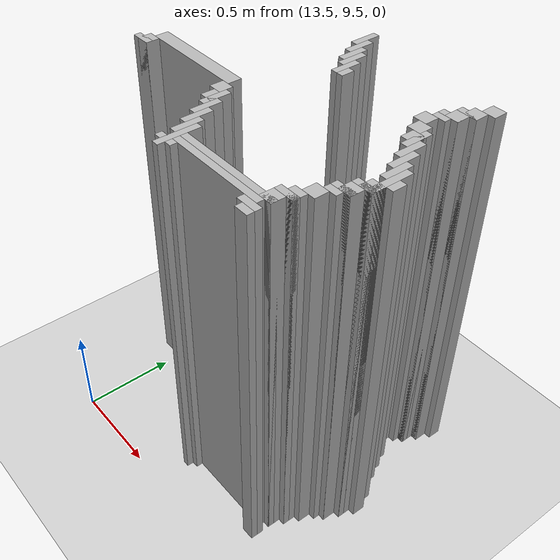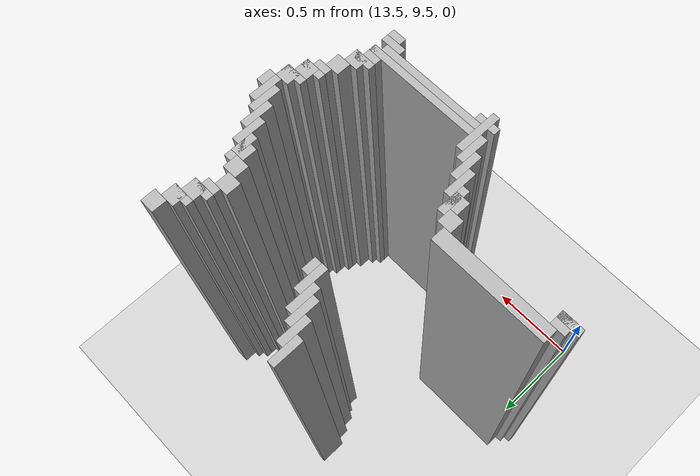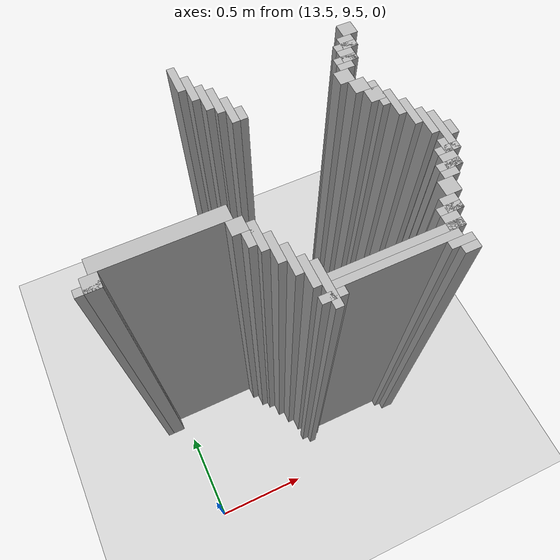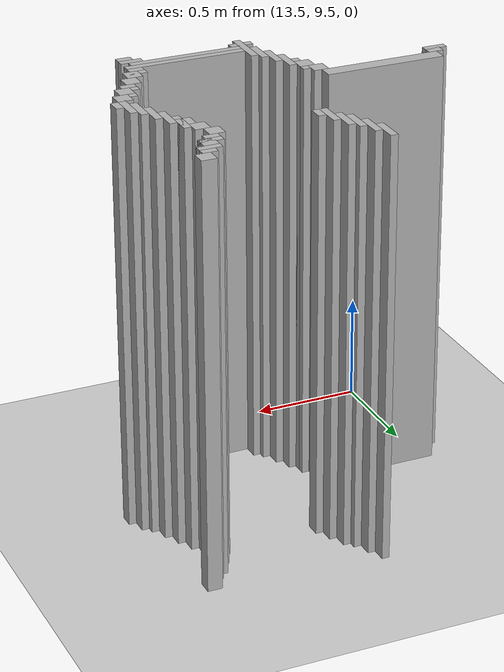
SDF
<sdf version="1.6">
 <world name="slam_world">
  <model name="ground_plane">
   <static>true</static>
   <link name="link">
    <collision name="collision">
     <geometry><plane><normal>0 0 1</normal><size>100 100</size></plane></geometry>
    </collision>
    <visual name="visual">
     <geometry><plane><normal>0 0 1</normal><size>100 100</size></plane></geometry>
     <material>
      <ambient>0.8 0.8 0.8 1</ambient>
      <diffuse>0.8 0.8 0.8 1</diffuse>
      <specular>0.8 0.8 0.8 1</specular>
     </material>
    </visual>
   </link>
  </model>
  <model name="wall_2138">
   <static>true</static>
   <pose>14.042923433874709 10.893271461716937 1.0 0 0 0</pose>
   <link name="link">
    <collision name="collision">
     <geometry><box><size>0.03480278422273782 0.13921113689095127 2.0</size></box></geometry>
    </collision>
    <visual name="visual">
     <geometry><box><size>0.03480278422273782 0.13921113689095127 2.0</size></box></geometry>
     <material><ambient>0.5 0.5 0.5 1</ambient><diffuse>0.7 0.7 0.7 1</diffuse></material>
    </visual>
   </link>
  </model>
  <model name="wall_2161">
   <static>true</static>
   <pose>14.077726218097448 10.82366589327146 1.0 0 0 0</pose>
   <link name="link">
    <collision name="collision">
     <geometry><box><size>0.03480278422273782 0.13921113689095127 2.0</size></box></geometry>
    </collision>
    <visual name="visual">
     <geometry><box><size>0.03480278422273782 0.13921113689095127 2.0</size></box></geometry>
     <material><ambient>0.5 0.5 0.5 1</ambient><diffuse>0.7 0.7 0.7 1</diffuse></material>
    </visual>
   </link>
  </model>
  <model name="wall_2162">
   <static>true</static>
   <pose>14.825986078886311 10.8584686774942 1.0 0 0 0</pose>
   <link name="link">
    <collision name="collision">
     <geometry><box><size>0.06960556844547564 0.06960556844547564 2.0</size></box></geometry>
    </collision>
    <visual name="visual">
     <geometry><box><size>0.06960556844547564 0.06960556844547564 2.0</size></box></geometry>
     <material><ambient>0.5 0.5 0.5 1</ambient><diffuse>0.7 0.7 0.7 1</diffuse></material>
    </visual>
   </link>
  </model>
  <model name="wall_2174">
   <static>true</static>
   <pose>14.112529002320185 10.754060324825986 1.0 0 0 0</pose>
   <link name="link">
    <collision name="collision">
     <geometry><box><size>0.03480278422273782 0.13921113689095127 2.0</size></box></geometry>
    </collision>
    <visual name="visual">
     <geometry><box><size>0.03480278422273782 0.13921113689095127 2.0</size></box></geometry>
     <material><ambient>0.5 0.5 0.5 1</ambient><diffuse>0.7 0.7 0.7 1</diffuse></material>
    </visual>
   </link>
  </model>
  <model name="wall_2175">
   <static>true</static>
   <pose>14.791183294663572 10.788863109048723 1.0 0 0 0</pose>
   <link name="link">
    <collision name="collision">
     <geometry><box><size>0.06960556844547564 0.06960556844547564 2.0</size></box></geometry>
    </collision>
    <visual name="visual">
     <geometry><box><size>0.06960556844547564 0.06960556844547564 2.0</size></box></geometry>
     <material><ambient>0.5 0.5 0.5 1</ambient><diffuse>0.7 0.7 0.7 1</diffuse></material>
    </visual>
   </link>
  </model>
  <model name="wall_2187">
   <static>true</static>
   <pose>14.147331786542923 10.719257540603248 1.0 0 0 0</pose>
   <link name="link">
    <collision name="collision">
     <geometry><box><size>0.03480278422273782 0.13921113689095127 2.0</size></box></geometry>
    </collision>
    <visual name="visual">
     <geometry><box><size>0.03480278422273782 0.13921113689095127 2.0</size></box></geometry>
     <material><ambient>0.5 0.5 0.5 1</ambient><diffuse>0.7 0.7 0.7 1</diffuse></material>
    </visual>
   </link>
  </model>
  <model name="wall_2188">
   <static>true</static>
   <pose>14.773781902552203 10.771461716937354 1.0 0 0 0</pose>
   <link name="link">
    <collision name="collision">
     <geometry><box><size>0.10440835266821345 0.03480278422273782 2.0</size></box></geometry>
    </collision>
    <visual name="visual">
     <geometry><box><size>0.10440835266821345 0.03480278422273782 2.0</size></box></geometry>
     <material><ambient>0.5 0.5 0.5 1</ambient><diffuse>0.7 0.7 0.7 1</diffuse></material>
    </visual>
   </link>
  </model>
  <model name="wall_2195">
   <static>true</static>
   <pose>14.756380510440835 10.719257540603248 1.0 0 0 0</pose>
   <link name="link">
    <collision name="collision">
     <geometry><box><size>0.06960556844547564 0.06960556844547564 2.0</size></box></geometry>
    </collision>
    <visual name="visual">
     <geometry><box><size>0.06960556844547564 0.06960556844547564 2.0</size></box></geometry>
     <material><ambient>0.5 0.5 0.5 1</ambient><diffuse>0.7 0.7 0.7 1</diffuse></material>
    </visual>
   </link>
  </model>
  <model name="wall_2207">
   <static>true</static>
   <pose>14.18213457076566 10.649651972157772 1.0 0 0 0</pose>
   <link name="link">
    <collision name="collision">
     <geometry><box><size>0.03480278422273782 0.13921113689095127 2.0</size></box></geometry>
    </collision>
    <visual name="visual">
     <geometry><box><size>0.03480278422273782 0.13921113689095127 2.0</size></box></geometry>
     <material><ambient>0.5 0.5 0.5 1</ambient><diffuse>0.7 0.7 0.7 1</diffuse></material>
    </visual>
   </link>
  </model>
  <model name="wall_2208">
   <static>true</static>
   <pose>14.738979118329466 10.70185614849188 1.0 0 0 0</pose>
   <link name="link">
    <collision name="collision">
     <geometry><box><size>0.10440835266821345 0.03480278422273782 2.0</size></box></geometry>
    </collision>
    <visual name="visual">
     <geometry><box><size>0.10440835266821345 0.03480278422273782 2.0</size></box></geometry>
     <material><ambient>0.5 0.5 0.5 1</ambient><diffuse>0.7 0.7 0.7 1</diffuse></material>
    </visual>
   </link>
  </model>
  <model name="wall_2215">
   <static>true</static>
   <pose>14.721577726218097 10.66705336426914 1.0 0 0 0</pose>
   <link name="link">
    <collision name="collision">
     <geometry><box><size>0.06960556844547564 0.03480278422273782 2.0</size></box></geometry>
    </collision>
    <visual name="visual">
     <geometry><box><size>0.06960556844547564 0.03480278422273782 2.0</size></box></geometry>
     <material><ambient>0.5 0.5 0.5 1</ambient><diffuse>0.7 0.7 0.7 1</diffuse></material>
    </visual>
   </link>
  </model>
  <model name="wall_2232">
   <static>true</static>
   <pose>14.2169373549884 10.614849187935034 1.0 0 0 0</pose>
   <link name="link">
    <collision name="collision">
     <geometry><box><size>0.03480278422273782 0.06960556844547564 2.0</size></box></geometry>
    </collision>
    <visual name="visual">
     <geometry><box><size>0.03480278422273782 0.06960556844547564 2.0</size></box></geometry>
     <material><ambient>0.5 0.5 0.5 1</ambient><diffuse>0.7 0.7 0.7 1</diffuse></material>
    </visual>
   </link>
  </model>
  <model name="wall_2233">
   <static>true</static>
   <pose>14.68677494199536 10.614849187935034 1.0 0 0 0</pose>
   <link name="link">
    <collision name="collision">
     <geometry><box><size>0.06960556844547564 0.06960556844547564 2.0</size></box></geometry>
    </collision>
    <visual name="visual">
     <geometry><box><size>0.06960556844547564 0.06960556844547564 2.0</size></box></geometry>
     <material><ambient>0.5 0.5 0.5 1</ambient><diffuse>0.7 0.7 0.7 1</diffuse></material>
    </visual>
   </link>
  </model>
  <model name="wall_2250">
   <static>true</static>
   <pose>14.721577726218097 10.54524361948956 1.0 0 0 0</pose>
   <link name="link">
    <collision name="collision">
     <geometry><box><size>0.06960556844547564 0.06960556844547564 2.0</size></box></geometry>
    </collision>
    <visual name="visual">
     <geometry><box><size>0.06960556844547564 0.06960556844547564 2.0</size></box></geometry>
     <material><ambient>0.5 0.5 0.5 1</ambient><diffuse>0.7 0.7 0.7 1</diffuse></material>
    </visual>
   </link>
  </model>
  <model name="wall_2267">
   <static>true</static>
   <pose>14.773781902552203 10.475638051044083 1.0 0 0 0</pose>
   <link name="link">
    <collision name="collision">
     <geometry><box><size>0.03480278422273782 0.13921113689095127 2.0</size></box></geometry>
    </collision>
    <visual name="visual">
     <geometry><box><size>0.03480278422273782 0.13921113689095127 2.0</size></box></geometry>
     <material><ambient>0.5 0.5 0.5 1</ambient><diffuse>0.7 0.7 0.7 1</diffuse></material>
    </visual>
   </link>
  </model>
  <model name="wall_2284">
   <static>true</static>
   <pose>14.756380510440835 10.475638051044083 1.0 0 0 0</pose>
   <link name="link">
    <collision name="collision">
     <geometry><box><size>0.06960556844547564 0.06960556844547564 2.0</size></box></geometry>
    </collision>
    <visual name="visual">
     <geometry><box><size>0.06960556844547564 0.06960556844547564 2.0</size></box></geometry>
     <material><ambient>0.5 0.5 0.5 1</ambient><diffuse>0.7 0.7 0.7 1</diffuse></material>
    </visual>
   </link>
  </model>
  <model name="wall_2301">
   <static>true</static>
   <pose>14.80858468677494 10.406032482598608 1.0 0 0 0</pose>
   <link name="link">
    <collision name="collision">
     <geometry><box><size>0.03480278422273782 0.13921113689095127 2.0</size></box></geometry>
    </collision>
    <visual name="visual">
     <geometry><box><size>0.03480278422273782 0.13921113689095127 2.0</size></box></geometry>
     <material><ambient>0.5 0.5 0.5 1</ambient><diffuse>0.7 0.7 0.7 1</diffuse></material>
    </visual>
   </link>
  </model>
  <model name="wall_2326">
   <static>true</static>
   <pose>14.84338747099768 10.336426914153131 1.0 0 0 0</pose>
   <link name="link">
    <collision name="collision">
     <geometry><box><size>0.03480278422273782 0.13921113689095127 2.0</size></box></geometry>
    </collision>
    <visual name="visual">
     <geometry><box><size>0.03480278422273782 0.13921113689095127 2.0</size></box></geometry>
     <material><ambient>0.5 0.5 0.5 1</ambient><diffuse>0.7 0.7 0.7 1</diffuse></material>
    </visual>
   </link>
  </model>
  <model name="wall_2343">
   <static>true</static>
   <pose>14.878190255220417 10.266821345707656 1.0 0 0 0</pose>
   <link name="link">
    <collision name="collision">
     <geometry><box><size>0.03480278422273782 0.13921113689095127 2.0</size></box></geometry>
    </collision>
    <visual name="visual">
     <geometry><box><size>0.03480278422273782 0.13921113689095127 2.0</size></box></geometry>
     <material><ambient>0.5 0.5 0.5 1</ambient><diffuse>0.7 0.7 0.7 1</diffuse></material>
    </visual>
   </link>
  </model>
  <model name="wall_2360">
   <static>true</static>
   <pose>14.912993039443155 10.19721577726218 1.0 0 0 0</pose>
   <link name="link">
    <collision name="collision">
     <geometry><box><size>0.03480278422273782 0.2088167053364269 2.0</size></box></geometry>
    </collision>
    <visual name="visual">
     <geometry><box><size>0.03480278422273782 0.2088167053364269 2.0</size></box></geometry>
     <material><ambient>0.5 0.5 0.5 1</ambient><diffuse>0.7 0.7 0.7 1</diffuse></material>
    </visual>
   </link>
  </model>
  <model name="wall_2380">
   <static>true</static>
   <pose>13.7122969837587 10.19721577726218 1.0 0 0 0</pose>
   <link name="link">
    <collision name="collision">
     <geometry><box><size>0.5568445475638051 0.06960556844547564 2.0</size></box></geometry>
    </collision>
    <visual name="visual">
     <geometry><box><size>0.5568445475638051 0.06960556844547564 2.0</size></box></geometry>
     <material><ambient>0.5 0.5 0.5 1</ambient><diffuse>0.7 0.7 0.7 1</diffuse></material>
    </visual>
   </link>
  </model>
  <model name="wall_2381">
   <static>true</static>
   <pose>14.947795823665892 10.19721577726218 1.0 0 0 0</pose>
   <link name="link">
    <collision name="collision">
     <geometry><box><size>0.03480278422273782 0.06960556844547564 2.0</size></box></geometry>
    </collision>
    <visual name="visual">
     <geometry><box><size>0.03480278422273782 0.06960556844547564 2.0</size></box></geometry>
     <material><ambient>0.5 0.5 0.5 1</ambient><diffuse>0.7 0.7 0.7 1</diffuse></material>
    </visual>
   </link>
  </model>
  <model name="wall_2403">
   <static>true</static>
   <pose>13.433874709976797 10.127610208816705 1.0 0 0 0</pose>
   <link name="link">
    <collision name="collision">
     <geometry><box><size>0.06960556844547564 0.06960556844547564 2.0</size></box></geometry>
    </collision>
    <visual name="visual">
     <geometry><box><size>0.06960556844547564 0.06960556844547564 2.0</size></box></geometry>
     <material><ambient>0.5 0.5 0.5 1</ambient><diffuse>0.7 0.7 0.7 1</diffuse></material>
    </visual>
   </link>
  </model>
  <model name="wall_2404">
   <static>true</static>
   <pose>13.990719257540603 10.127610208816705 1.0 0 0 0</pose>
   <link name="link">
    <collision name="collision">
     <geometry><box><size>0.06960556844547564 0.06960556844547564 2.0</size></box></geometry>
    </collision>
    <visual name="visual">
     <geometry><box><size>0.06960556844547564 0.06960556844547564 2.0</size></box></geometry>
     <material><ambient>0.5 0.5 0.5 1</ambient><diffuse>0.7 0.7 0.7 1</diffuse></material>
    </visual>
   </link>
  </model>
  <model name="wall_2405">
   <static>true</static>
   <pose>14.895591647331786 10.127610208816705 1.0 0 0 0</pose>
   <link name="link">
    <collision name="collision">
     <geometry><box><size>0.06960556844547564 0.06960556844547564 2.0</size></box></geometry>
    </collision>
    <visual name="visual">
     <geometry><box><size>0.06960556844547564 0.06960556844547564 2.0</size></box></geometry>
     <material><ambient>0.5 0.5 0.5 1</ambient><diffuse>0.7 0.7 0.7 1</diffuse></material>
    </visual>
   </link>
  </model>
  <model name="wall_2419">
   <static>true</static>
   <pose>13.416473317865428 10.110208816705336 1.0 0 0 0</pose>
   <link name="link">
    <collision name="collision">
     <geometry><box><size>0.10440835266821345 0.03480278422273782 2.0</size></box></geometry>
    </collision>
    <visual name="visual">
     <geometry><box><size>0.10440835266821345 0.03480278422273782 2.0</size></box></geometry>
     <material><ambient>0.5 0.5 0.5 1</ambient><diffuse>0.7 0.7 0.7 1</diffuse></material>
    </visual>
   </link>
  </model>
  <model name="wall_2420">
   <static>true</static>
   <pose>14.042923433874709 10.058004640371228 1.0 0 0 0</pose>
   <link name="link">
    <collision name="collision">
     <geometry><box><size>0.03480278422273782 0.13921113689095127 2.0</size></box></geometry>
    </collision>
    <visual name="visual">
     <geometry><box><size>0.03480278422273782 0.13921113689095127 2.0</size></box></geometry>
     <material><ambient>0.5 0.5 0.5 1</ambient><diffuse>0.7 0.7 0.7 1</diffuse></material>
    </visual>
   </link>
  </model>
  <model name="wall_2421">
   <static>true</static>
   <pose>14.878190255220417 10.110208816705336 1.0 0 0 0</pose>
   <link name="link">
    <collision name="collision">
     <geometry><box><size>0.10440835266821345 0.03480278422273782 2.0</size></box></geometry>
    </collision>
    <visual name="visual">
     <geometry><box><size>0.10440835266821345 0.03480278422273782 2.0</size></box></geometry>
     <material><ambient>0.5 0.5 0.5 1</ambient><diffuse>0.7 0.7 0.7 1</diffuse></material>
    </visual>
   </link>
  </model>
  <model name="wall_2436">
   <static>true</static>
   <pose>14.02552204176334 10.058004640371228 1.0 0 0 0</pose>
   <link name="link">
    <collision name="collision">
     <geometry><box><size>0.06960556844547564 0.06960556844547564 2.0</size></box></geometry>
    </collision>
    <visual name="visual">
     <geometry><box><size>0.06960556844547564 0.06960556844547564 2.0</size></box></geometry>
     <material><ambient>0.5 0.5 0.5 1</ambient><diffuse>0.7 0.7 0.7 1</diffuse></material>
    </visual>
   </link>
  </model>
  <model name="wall_2437">
   <static>true</static>
   <pose>14.860788863109049 10.058004640371228 1.0 0 0 0</pose>
   <link name="link">
    <collision name="collision">
     <geometry><box><size>0.06960556844547564 0.06960556844547564 2.0</size></box></geometry>
    </collision>
    <visual name="visual">
     <geometry><box><size>0.06960556844547564 0.06960556844547564 2.0</size></box></geometry>
     <material><ambient>0.5 0.5 0.5 1</ambient><diffuse>0.7 0.7 0.7 1</diffuse></material>
    </visual>
   </link>
  </model>
  <model name="wall_2452">
   <static>true</static>
   <pose>14.077726218097448 9.988399071925754 1.0 0 0 0</pose>
   <link name="link">
    <collision name="collision">
     <geometry><box><size>0.03480278422273782 0.13921113689095127 2.0</size></box></geometry>
    </collision>
    <visual name="visual">
     <geometry><box><size>0.03480278422273782 0.13921113689095127 2.0</size></box></geometry>
     <material><ambient>0.5 0.5 0.5 1</ambient><diffuse>0.7 0.7 0.7 1</diffuse></material>
    </visual>
   </link>
  </model>
  <model name="wall_2453">
   <static>true</static>
   <pose>14.84338747099768 10.04060324825986 1.0 0 0 0</pose>
   <link name="link">
    <collision name="collision">
     <geometry><box><size>0.10440835266821345 0.03480278422273782 2.0</size></box></geometry>
    </collision>
    <visual name="visual">
     <geometry><box><size>0.10440835266821345 0.03480278422273782 2.0</size></box></geometry>
     <material><ambient>0.5 0.5 0.5 1</ambient><diffuse>0.7 0.7 0.7 1</diffuse></material>
    </visual>
   </link>
  </model>
  <model name="wall_2462">
   <static>true</static>
   <pose>14.825986078886311 10.005800464037122 1.0 0 0 0</pose>
   <link name="link">
    <collision name="collision">
     <geometry><box><size>0.06960556844547564 0.03480278422273782 2.0</size></box></geometry>
    </collision>
    <visual name="visual">
     <geometry><box><size>0.06960556844547564 0.03480278422273782 2.0</size></box></geometry>
     <material><ambient>0.5 0.5 0.5 1</ambient><diffuse>0.7 0.7 0.7 1</diffuse></material>
    </visual>
   </link>
  </model>
  <model name="wall_2477">
   <static>true</static>
   <pose>14.112529002320185 9.918793503480279 1.0 0 0 0</pose>
   <link name="link">
    <collision name="collision">
     <geometry><box><size>0.03480278422273782 0.13921113689095127 2.0</size></box></geometry>
    </collision>
    <visual name="visual">
     <geometry><box><size>0.03480278422273782 0.13921113689095127 2.0</size></box></geometry>
     <material><ambient>0.5 0.5 0.5 1</ambient><diffuse>0.7 0.7 0.7 1</diffuse></material>
    </visual>
   </link>
  </model>
  <model name="wall_2478">
   <static>true</static>
   <pose>14.791183294663572 9.953596287703016 1.0 0 0 0</pose>
   <link name="link">
    <collision name="collision">
     <geometry><box><size>0.06960556844547564 0.06960556844547564 2.0</size></box></geometry>
    </collision>
    <visual name="visual">
     <geometry><box><size>0.06960556844547564 0.06960556844547564 2.0</size></box></geometry>
     <material><ambient>0.5 0.5 0.5 1</ambient><diffuse>0.7 0.7 0.7 1</diffuse></material>
    </visual>
   </link>
  </model>
  <model name="wall_2493">
   <static>true</static>
   <pose>14.147331786542923 9.849187935034802 1.0 0 0 0</pose>
   <link name="link">
    <collision name="collision">
     <geometry><box><size>0.03480278422273782 0.13921113689095127 2.0</size></box></geometry>
    </collision>
    <visual name="visual">
     <geometry><box><size>0.03480278422273782 0.13921113689095127 2.0</size></box></geometry>
     <material><ambient>0.5 0.5 0.5 1</ambient><diffuse>0.7 0.7 0.7 1</diffuse></material>
    </visual>
   </link>
  </model>
  <model name="wall_2494">
   <static>true</static>
   <pose>14.756380510440835 9.88399071925754 1.0 0 0 0</pose>
   <link name="link">
    <collision name="collision">
     <geometry><box><size>0.06960556844547564 0.06960556844547564 2.0</size></box></geometry>
    </collision>
    <visual name="visual">
     <geometry><box><size>0.06960556844547564 0.06960556844547564 2.0</size></box></geometry>
     <material><ambient>0.5 0.5 0.5 1</ambient><diffuse>0.7 0.7 0.7 1</diffuse></material>
    </visual>
   </link>
  </model>
  <model name="wall_2509">
   <static>true</static>
   <pose>14.18213457076566 9.779582366589327 1.0 0 0 0</pose>
   <link name="link">
    <collision name="collision">
     <geometry><box><size>0.03480278422273782 0.2088167053364269 2.0</size></box></geometry>
    </collision>
    <visual name="visual">
     <geometry><box><size>0.03480278422273782 0.2088167053364269 2.0</size></box></geometry>
     <material><ambient>0.5 0.5 0.5 1</ambient><diffuse>0.7 0.7 0.7 1</diffuse></material>
    </visual>
   </link>
  </model>
  <model name="wall_2510">
   <static>true</static>
   <pose>14.738979118329466 9.86658932714617 1.0 0 0 0</pose>
   <link name="link">
    <collision name="collision">
     <geometry><box><size>0.10440835266821345 0.03480278422273782 2.0</size></box></geometry>
    </collision>
    <visual name="visual">
     <geometry><box><size>0.10440835266821345 0.03480278422273782 2.0</size></box></geometry>
     <material><ambient>0.5 0.5 0.5 1</ambient><diffuse>0.7 0.7 0.7 1</diffuse></material>
    </visual>
   </link>
  </model>
  <model name="wall_2519">
   <static>true</static>
   <pose>14.721577726218097 9.814385150812065 1.0 0 0 0</pose>
   <link name="link">
    <collision name="collision">
     <geometry><box><size>0.06960556844547564 0.06960556844547564 2.0</size></box></geometry>
    </collision>
    <visual name="visual">
     <geometry><box><size>0.06960556844547564 0.06960556844547564 2.0</size></box></geometry>
     <material><ambient>0.5 0.5 0.5 1</ambient><diffuse>0.7 0.7 0.7 1</diffuse></material>
    </visual>
   </link>
  </model>
  <model name="wall_2533">
   <static>true</static>
   <pose>14.477958236658932 9.796983758700696 1.0 0 0 0</pose>
   <link name="link">
    <collision name="collision">
     <geometry><box><size>0.5568445475638051 0.03480278422273782 2.0</size></box></geometry>
    </collision>
    <visual name="visual">
     <geometry><box><size>0.5568445475638051 0.03480278422273782 2.0</size></box></geometry>
     <material><ambient>0.5 0.5 0.5 1</ambient><diffuse>0.7 0.7 0.7 1</diffuse></material>
    </visual>
   </link>
  </model>
  <model name="wall_2542">
   <static>true</static>
   <pose>14.460556844547563 9.762180974477959 1.0 0 0 0</pose>
   <link name="link">
    <collision name="collision">
     <geometry><box><size>0.5220417633410672 0.03480278422273782 2.0</size></box></geometry>
    </collision>
    <visual name="visual">
     <geometry><box><size>0.5220417633410672 0.03480278422273782 2.0</size></box></geometry>
     <material><ambient>0.5 0.5 0.5 1</ambient><diffuse>0.7 0.7 0.7 1</diffuse></material>
    </visual>
   </link>
  </model>
  <model name="wall_2552">
   <static>true</static>
   <pose>14.18213457076566 9.72737819025522 1.0 0 0 0</pose>
   <link name="link">
    <collision name="collision">
     <geometry><box><size>0.10440835266821345 0.03480278422273782 2.0</size></box></geometry>
    </collision>
    <visual name="visual">
     <geometry><box><size>0.10440835266821345 0.03480278422273782 2.0</size></box></geometry>
     <material><ambient>0.5 0.5 0.5 1</ambient><diffuse>0.7 0.7 0.7 1</diffuse></material>
    </visual>
   </link>
  </model>
  <model name="wall_2553">
   <static>true</static>
   <pose>14.704176334106728 9.72737819025522 1.0 0 0 0</pose>
   <link name="link">
    <collision name="collision">
     <geometry><box><size>0.10440835266821345 0.03480278422273782 2.0</size></box></geometry>
    </collision>
    <visual name="visual">
     <geometry><box><size>0.10440835266821345 0.03480278422273782 2.0</size></box></geometry>
     <material><ambient>0.5 0.5 0.5 1</ambient><diffuse>0.7 0.7 0.7 1</diffuse></material>
    </visual>
   </link>
  </model>
  <model name="wall_2559">
   <static>true</static>
   <pose>14.721577726218097 9.692575406032482 1.0 0 0 0</pose>
   <link name="link">
    <collision name="collision">
     <geometry><box><size>0.06960556844547564 0.03480278422273782 2.0</size></box></geometry>
    </collision>
    <visual name="visual">
     <geometry><box><size>0.06960556844547564 0.03480278422273782 2.0</size></box></geometry>
     <material><ambient>0.5 0.5 0.5 1</ambient><diffuse>0.7 0.7 0.7 1</diffuse></material>
    </visual>
   </link>
  </model>
 </world>
</sdf>
